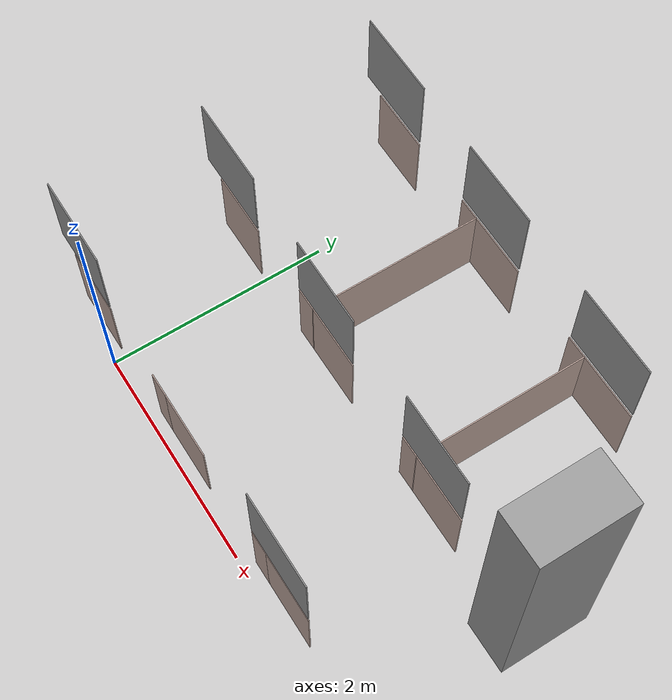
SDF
<sdf version="1.6">
 <model name="change_class2">
  <pose>0.163402 0.008075 0 0 -0 0</pose>
  <link name="Wall_10">
   <collision name="Wall_10_Collision">
    <geometry><box><size>0.598 0.01 0.715</size></box></geometry>
    <pose>0 0 0.3575 0 -0 0</pose>
   </collision>
   <visual name="Wall_10_Visual">
    <pose>0 0 0.3575 0 -0 0</pose>
    <geometry><box><size>0.598 0.01 0.715</size></box></geometry>
    <material>
     <script><uri>file://media/materials/scripts/gazebo.material</uri><name>Gazebo/Grey</name></script>
     <ambient>0.760784 0.662745 0.627451 1</ambient>
    </material>
   </visual>
   <pose>-0.535402 1.46893 0 0 -0 0</pose>
  </link>
  <link name="Wall_12">
   <collision name="Wall_12_Collision">
    <geometry><box><size>0.598 0.01 0.715</size></box></geometry>
    <pose>0 0 0.3575 0 -0 0</pose>
   </collision>
   <visual name="Wall_12_Visual">
    <pose>0 0 0.3575 0 -0 0</pose>
    <geometry><box><size>0.598 0.01 0.715</size></box></geometry>
    <material>
     <script><uri>file://media/materials/scripts/gazebo.material</uri><name>Gazebo/Grey</name></script>
     <ambient>0.760784 0.662745 0.627451 1</ambient>
    </material>
   </visual>
   <pose>0.901598 1.46893 0 0 -0 0</pose>
  </link>
  <link name="Wall_14">
   <collision name="Wall_14_Collision">
    <geometry><box><size>0.61 0.01 0.715</size></box></geometry>
    <pose>0 0 0.3575 0 -0 0</pose>
   </collision>
   <visual name="Wall_14_Visual">
    <pose>0 0 0.3575 0 -0 0</pose>
    <geometry><box><size>0.61 0.01 0.715</size></box></geometry>
    <material>
     <script><uri>file://media/materials/scripts/gazebo.material</uri><name>Gazebo/Grey</name></script>
     <ambient>0.760784 0.662745 0.627451 1</ambient>
    </material>
   </visual>
   <pose>2.3996 1.46893 0 0 -0 0</pose>
  </link>
  <link name="Wall_143">
   <collision name="Wall_143_Collision">
    <geometry><box><size>0.598 0.01 0.715</size></box></geometry>
    <pose>0 0 0.3575 0 -0 0</pose>
   </collision>
   <visual name="Wall_143_Visual">
    <pose>0 0 0.3575 0 -0 0</pose>
    <geometry><box><size>0.598 0.01 0.715</size></box></geometry>
    <material>
     <script><uri>file://media/materials/scripts/gazebo.material</uri><name>Gazebo/Grey</name></script>
     <ambient>0.760784 0.662745 0.627451 1</ambient>
    </material>
   </visual>
   <pose>-0.535402 3.04292 0 0 -0 0</pose>
  </link>
  <link name="Wall_147">
   <collision name="Wall_147_Collision">
    <geometry><box><size>0.598 0.01 0.715</size></box></geometry>
    <pose>0 0 0.3575 0 -0 0</pose>
   </collision>
   <visual name="Wall_147_Visual">
    <pose>0 0 0.3575 0 -0 0</pose>
    <geometry><box><size>0.598 0.01 0.715</size></box></geometry>
    <material>
     <script><uri>file://media/materials/scripts/gazebo.material</uri><name>Gazebo/Grey</name></script>
     <ambient>0.760784 0.662745 0.627451 1</ambient>
    </material>
   </visual>
   <pose>0.901598 3.04292 0 0 -0 0</pose>
  </link>
  <link name="Wall_153">
   <collision name="Wall_153_Collision">
    <geometry><box><size>0.609517 0.01 0.715</size></box></geometry>
    <pose>0 0 0.3575 0 -0 0</pose>
   </collision>
   <visual name="Wall_153_Visual">
    <pose>0 0 0.3575 0 -0 0</pose>
    <geometry><box><size>0.609517 0.01 0.715</size></box></geometry>
    <material>
     <script><uri>file://media/materials/scripts/gazebo.material</uri><name>Gazebo/Grey</name></script>
     <ambient>0.760784 0.662745 0.627451 1</ambient>
    </material>
   </visual>
   <pose>2.3996 3.04292 0 0 -0 0</pose>
  </link>
  <link name="Wall_157">
   <collision name="Wall_157_Collision">
    <geometry><box><size>0.798 0.01 0.751</size></box></geometry>
    <pose>0 0 0.3755 0 -0 0</pose>
   </collision>
   <visual name="Wall_157_Visual">
    <pose>0 0 0.3755 0 -0 0</pose>
    <geometry><box><size>0.798 0.01 0.751</size></box></geometry>
    <material>
     <script><uri>file://media/materials/scripts/gazebo.material</uri><name>Gazebo/Grey</name></script>
     <ambient>1 1 1 1</ambient>
    </material>
   </visual>
   <pose>-0.639402 1.46893 0.751 0 -0 0</pose>
  </link>
  <link name="Wall_158">
   <collision name="Wall_158_Collision">
    <geometry><box><size>0.798 0.01 0.715</size></box></geometry>
    <pose>0 0 0.3575 0 -0 0</pose>
   </collision>
   <visual name="Wall_158_Visual">
    <pose>0 0 0.3575 0 -0 0</pose>
    <geometry><box><size>0.798 0.01 0.715</size></box></geometry>
    <material>
     <script><uri>file://media/materials/scripts/gazebo.material</uri><name>Gazebo/Grey</name></script>
     <ambient>1 1 1 1</ambient>
    </material>
   </visual>
   <pose>0.801598 1.46893 0.751 0 -0 0</pose>
  </link>
  <link name="Wall_159">
   <collision name="Wall_159_Collision">
    <geometry><box><size>0.798 0.01 0.715</size></box></geometry>
    <pose>0 0 0.3575 0 -0 0</pose>
   </collision>
   <visual name="Wall_159_Visual">
    <pose>0 0 0.3575 0 -0 0</pose>
    <geometry><box><size>0.798 0.01 0.715</size></box></geometry>
    <material>
     <script><uri>file://media/materials/scripts/gazebo.material</uri><name>Gazebo/Grey</name></script>
     <ambient>1 1 1 1</ambient>
    </material>
   </visual>
   <pose>2.3056 1.46893 0.751 0 -0 0</pose>
  </link>
  <link name="Wall_162">
   <collision name="Wall_162_Collision">
    <geometry><box><size>0.798 0.01 0.751</size></box></geometry>
    <pose>0 0 0.3755 0 -0 0</pose>
   </collision>
   <visual name="Wall_162_Visual">
    <pose>0 0 0.3755 0 -0 0</pose>
    <geometry><box><size>0.798 0.01 0.751</size></box></geometry>
    <material>
     <script><uri>file://media/materials/scripts/gazebo.material</uri><name>Gazebo/Grey</name></script>
     <ambient>1 1 1 1</ambient>
    </material>
   </visual>
   <pose>-0.647402 0.108925 0.751 0 -0 0</pose>
  </link>
  <link name="Wall_163">
   <collision name="Wall_163_Collision">
    <geometry><box><size>0.798 0.01 0.751</size></box></geometry>
    <pose>0 0 0.3755 0 -0 0</pose>
   </collision>
   <visual name="Wall_163_Visual">
    <pose>0 0 0.3755 0 -0 0</pose>
    <geometry><box><size>0.798 0.01 0.751</size></box></geometry>
    <material>
     <script><uri>file://media/materials/scripts/gazebo.material</uri><name>Gazebo/Grey</name></script>
     <ambient>1 1 1 1</ambient>
    </material>
   </visual>
   <pose>2.3446 0.108925 0.751 0 -0 0</pose>
  </link>
  <link name="Wall_187">
   <collision name="Wall_187_Collision">
    <geometry><box><size>0.798 0.01 0.751</size></box></geometry>
    <pose>0 0 0.3755 0 -0 0</pose>
   </collision>
   <visual name="Wall_187_Visual">
    <pose>0 0 0.3755 0 -0 0</pose>
    <geometry><box><size>0.798 0.01 0.751</size></box></geometry>
    <material>
     <script><uri>file://media/materials/scripts/gazebo.material</uri><name>Gazebo/Grey</name></script>
     <ambient>1 1 1 1</ambient>
    </material>
   </visual>
   <pose>-0.639402 3.04893 0.751 0 -0 0</pose>
  </link>
  <link name="Wall_188">
   <collision name="Wall_188_Collision">
    <geometry><box><size>0.798 0.01 0.751</size></box></geometry>
    <pose>0 0 0.3755 0 -0 0</pose>
   </collision>
   <visual name="Wall_188_Visual">
    <pose>0 0 0.3755 0 -0 0</pose>
    <geometry><box><size>0.798 0.01 0.751</size></box></geometry>
    <material>
     <script><uri>file://media/materials/scripts/gazebo.material</uri><name>Gazebo/Grey</name></script>
     <ambient>1 1 1 1</ambient>
    </material>
   </visual>
   <pose>0.801598 3.04893 0.751 0 -0 0</pose>
  </link>
  <link name="Wall_189">
   <collision name="Wall_189_Collision">
    <geometry><box><size>0.798 0.01 0.751</size></box></geometry>
    <pose>0 0 0.3755 0 -0 0</pose>
   </collision>
   <visual name="Wall_189_Visual">
    <pose>0 0 0.3755 0 -0 0</pose>
    <geometry><box><size>0.798 0.01 0.751</size></box></geometry>
    <material>
     <script><uri>file://media/materials/scripts/gazebo.material</uri><name>Gazebo/Grey</name></script>
     <ambient>1 1 1 1</ambient>
    </material>
   </visual>
   <pose>2.3056 3.04893 0.751 0 -0 0</pose>
  </link>
  <link name="Wall_197">
   <collision name="Wall_197_Collision">
    <geometry><box><size>1.584 0.01 0.715</size></box></geometry>
    <pose>0 0 0.3575 0 -0 0</pose>
   </collision>
   <visual name="Wall_197_Visual">
    <pose>0 0 0.3575 0 -0 0</pose>
    <geometry><box><size>1.584 0.01 0.715</size></box></geometry>
    <material>
     <script><uri>file://media/materials/scripts/gazebo.material</uri><name>Gazebo/Grey</name></script>
     <ambient>0.760784 0.662745 0.627451 1</ambient>
    </material>
   </visual>
   <pose>0.607598 2.25592 0 0 0 -1.5708</pose>
  </link>
  <link name="Wall_199">
   <collision name="Wall_199_Collision">
    <geometry><box><size>1.58405 0.01 0.715</size></box></geometry>
    <pose>0 0 0.3575 0 -0 0</pose>
   </collision>
   <visual name="Wall_199_Visual">
    <pose>0 0 0.3575 0 -0 0</pose>
    <geometry><box><size>1.58405 0.01 0.715</size></box></geometry>
    <material>
     <script><uri>file://media/materials/scripts/gazebo.material</uri><name>Gazebo/Grey</name></script>
     <ambient>0.760784 0.662745 0.627451 1</ambient>
    </material>
   </visual>
   <pose>2.0996 2.25592 0 0 0 -1.5708</pose>
  </link>
  <link name="Wall_20">
   <collision name="Wall_20_Collision">
    <geometry><box><size>0.598 0.01 0.715</size></box></geometry>
    <pose>0 0 0.3575 0 -0 0</pose>
   </collision>
   <visual name="Wall_20_Visual">
    <pose>0 0 0.3575 0 -0 0</pose>
    <geometry><box><size>0.598 0.01 0.715</size></box></geometry>
    <material>
     <script><uri>file://media/materials/scripts/gazebo.material</uri><name>Gazebo/Grey</name></script>
     <ambient>0.760784 0.662745 0.627451 1</ambient>
    </material>
   </visual>
   <pose>-0.547402 0.108925 0 0 -0 0</pose>
  </link>
  <link name="Wall_236">
   <collision name="Wall_236_Collision">
    <geometry><box><size>0.21 0.01 0.715</size></box></geometry>
    <pose>0 0 0.3575 0 -0 0</pose>
   </collision>
   <visual name="Wall_236_Visual">
    <pose>0 0 0.3575 0 -0 0</pose>
    <geometry><box><size>0.21 0.01 0.715</size></box></geometry>
    <material>
     <script><uri>file://media/materials/scripts/gazebo.material</uri><name>Gazebo/Grey</name></script>
     <ambient>0.760784 0.662745 0.627451 1</ambient>
    </material>
   </visual>
   <pose>0.507598 1.46893 0 0 -0 0</pose>
  </link>
  <link name="Wall_238">
   <collision name="Wall_238_Collision">
    <geometry><box><size>0.21 0.01 0.715</size></box></geometry>
    <pose>0 0 0.3575 0 -0 0</pose>
   </collision>
   <visual name="Wall_238_Visual">
    <pose>0 0 0.3575 0 -0 0</pose>
    <geometry><box><size>0.21 0.01 0.715</size></box></geometry>
    <material>
     <script><uri>file://media/materials/scripts/gazebo.material</uri><name>Gazebo/Grey</name></script>
     <ambient>0.760784 0.662745 0.627451 1</ambient>
    </material>
   </visual>
   <pose>0.507598 3.04292 0 0 -0 0</pose>
  </link>
  <link name="Wall_24">
   <collision name="Wall_24_Collision">
    <geometry><box><size>0.598 0.01 0.715</size></box></geometry>
    <pose>0 0 0.3575 0 -0 0</pose>
   </collision>
   <visual name="Wall_24_Visual">
    <pose>0 0 0.3575 0 -0 0</pose>
    <geometry><box><size>0.598 0.01 0.715</size></box></geometry>
    <material>
     <script><uri>file://media/materials/scripts/gazebo.material</uri><name>Gazebo/Grey</name></script>
     <ambient>0.760784 0.662745 0.627451 1</ambient>
    </material>
   </visual>
   <pose>2.4446 0.108925 0 0 -0 0</pose>
  </link>
  <link name="Wall_240">
   <collision name="Wall_240_Collision">
    <geometry><box><size>0.198 0.01 0.715</size></box></geometry>
    <pose>0 0 0.3575 0 -0 0</pose>
   </collision>
   <visual name="Wall_240_Visual">
    <pose>0 0 0.3575 0 -0 0</pose>
    <geometry><box><size>0.198 0.01 0.715</size></box></geometry>
    <material>
     <script><uri>file://media/materials/scripts/gazebo.material</uri><name>Gazebo/Grey</name></script>
     <ambient>0.760784 0.662745 0.627451 1</ambient>
    </material>
   </visual>
   <pose>2.0056 1.46893 0 0 -0 0</pose>
  </link>
  <link name="Wall_242">
   <collision name="Wall_242_Collision">
    <geometry><box><size>0.21 0.01 0.715</size></box></geometry>
    <pose>0 0 0.3575 0 -0 0</pose>
   </collision>
   <visual name="Wall_242_Visual">
    <pose>0 0 0.3575 0 -0 0</pose>
    <geometry><box><size>0.21 0.01 0.715</size></box></geometry>
    <material>
     <script><uri>file://media/materials/scripts/gazebo.material</uri><name>Gazebo/Grey</name></script>
     <ambient>0.760784 0.662745 0.627451 1</ambient>
    </material>
   </visual>
   <pose>1.9996 3.04292 0 0 -0 0</pose>
  </link>
  <link name="Wall_291">
   <collision name="Wall_291_Collision">
    <geometry><box><size>0.21 0.01 0.715</size></box></geometry>
    <pose>0 0 0.3575 0 -0 0</pose>
   </collision>
   <visual name="Wall_291_Visual">
    <pose>0 0 0.3575 0 -0 0</pose>
    <geometry><box><size>0.21 0.01 0.715</size></box></geometry>
    <material>
     <script><uri>file://media/materials/scripts/gazebo.material</uri><name>Gazebo/Grey</name></script>
     <ambient>0.760784 0.662745 0.627451 1</ambient>
    </material>
   </visual>
   <pose>0.536598 0.108925 0 0 -0 0</pose>
  </link>
  <link name="Wall_295">
   <collision name="Wall_295_Collision">
    <geometry><box><size>0.21 0.01 0.715</size></box></geometry>
    <pose>0 0 0.3575 0 -0 0</pose>
   </collision>
   <visual name="Wall_295_Visual">
    <pose>0 0 0.3575 0 -0 0</pose>
    <geometry><box><size>0.21 0.01 0.715</size></box></geometry>
    <material>
     <script><uri>file://media/materials/scripts/gazebo.material</uri><name>Gazebo/Grey</name></script>
     <ambient>0.760784 0.662745 0.627451 1</ambient>
    </material>
   </visual>
   <pose>2.0506 0.108925 0 0 -0 0</pose>
  </link>
  <link name="Wall_301">
   <collision name="Wall_301_Collision">
    <geometry><box><size>0.795 0.45 2.5</size></box></geometry>
    <pose>0 0 1.25 0 -0 0</pose>
   </collision>
   <visual name="Wall_301_Visual">
    <pose>0 0 1.25 0 -0 0</pose>
    <geometry><box><size>0.795 0.45 2.5</size></box></geometry>
    <material>
     <script><uri>file://media/materials/scripts/gazebo.material</uri><name>Gazebo/Grey</name></script>
     <ambient>1 1 1 1</ambient>
    </material>
   </visual>
   <pose>3.4546 1.62443 0 0 0 -1.5708</pose>
  </link>
  <link name="Wall_32">
   <collision name="Wall_32_Collision">
    <geometry><box><size>0.598 0.01 0.715</size></box></geometry>
    <pose>0 0 0.3575 0 -0 0</pose>
   </collision>
   <visual name="Wall_32_Visual">
    <pose>0 0 0.3575 0 -0 0</pose>
    <geometry><box><size>0.598 0.01 0.715</size></box></geometry>
    <material>
     <script><uri>file://media/materials/scripts/gazebo.material</uri><name>Gazebo/Grey</name></script>
     <ambient>0.760784 0.662745 0.627451 1</ambient>
    </material>
   </visual>
   <pose>0.930598 0.108925 0 0 -0 0</pose>
  </link>
  <static>1</static>
 </model>
</sdf>
